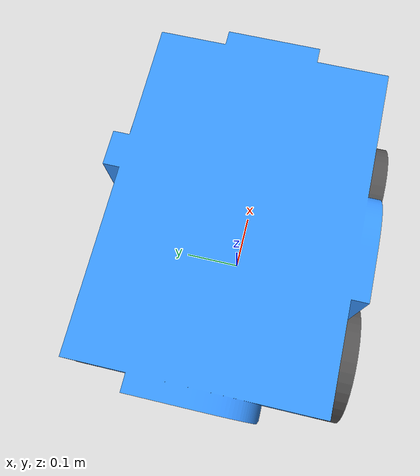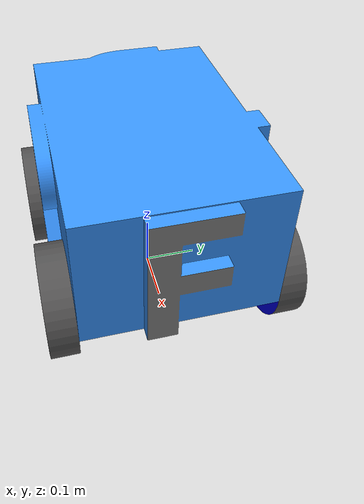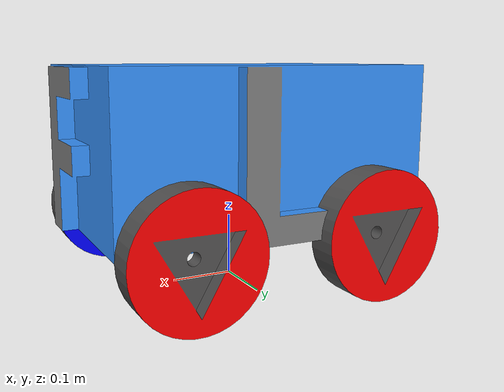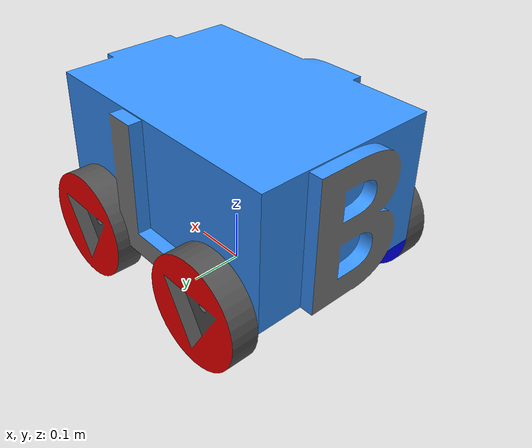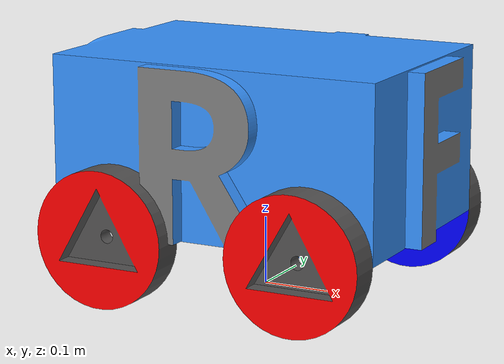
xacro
<?xml version="1.0"?>
<!-- 4 Wheel Robot with front steering and rear drive -->
<robot xmlns:xacro="http://www.ros.org/wiki/xacro" name="microros_hardware">
  <xacro:arg name="prefix" default="" />
  <xacro:arg name="sim_mode" default="false"/>

  <!-- Import Static Files -->
    <xacro:include filename="$(find microros_hardware_interface)/description/urdf/util/constants.xacro" />

  <!-- Import Rviz colors -->
    <xacro:include filename="$(find microros_hardware_interface)/description/urdf/util/materials.xacro" />

  <!-- Import Macros -->
    <xacro:include filename="$(find microros_hardware_interface)/description/urdf/macros/wheel.xacro" />

  <!-- Import Robot Description -->
    <xacro:include filename="$(find microros_hardware_interface)/description/urdf/robot.urdf.xacro" />

  <!-- Import Hardware Interface -->
    <xacro:include filename="$(find microros_hardware_interface)/description/ros2_control/microros_hardware.ros2_control.xacro" />
    <xacro:robot_hardware prefix="$(arg prefix)" />
    <xacro:micro_system_hardware_ros2_control name="MicroSystemHardware" prefix="$(arg prefix)"/>

  <!-- Hardware Components -->

    <!-- Import Driver Camera -->

    <!-- Import Oak-D -->

    <!-- Import LiDAR -->

</robot>

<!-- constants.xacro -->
<robot xmlns:xacro="http://www.ros.org/wiki/xacro">

    <!-- Physics Constants -->

        <xacro:property name="PI" value="3.1415926535897931"/>

        <xacro:property name="friction" value="1"/>
        <xacro:property name="min_depth" value="0.5"/>
        <xacro:property name="damping" value="0.001"/>

    <!-- System Wide Constants -->

        <xacro:property name="base_mass" value="20" /> <!-- arbitrary value for base mass -->
        <xacro:property name="base_width" value="0.35" />
        <xacro:property name="base_length" value="0.50" />
        <xacro:property name="base_height" value="0.25" />

    <!-- Mechanism Specific -->

        <!-- Wheels -->
            <xacro:property name="wheelbase" value="0.350" />
            <xacro:property name="wheel_width" value="0.05" />
            <xacro:property name="wheel_radius" value="0.1" />
            <xacro:property name="wheel_mass" value="0.5" /> <!-- arbitrary value for wheel mass -->

            <xacro:property name="front_left_wheel_x" value="0.150"/>
            <xacro:property name="front_left_wheel_y" value="0.175"/>
            <xacro:property name="front_left_wheel_z" value="0.00"/>

            <xacro:property name="front_right_wheel_x" value="0.150"/>
            <xacro:property name="front_right_wheel_y" value="-0.175"/>
            <xacro:property name="front_right_wheel_z" value="0.00"/>

            <xacro:property name="back_left_wheel_x" value="-0.150"/>
            <xacro:property name="back_left_wheel_y" value="0.175"/>
            <xacro:property name="back_left_wheel_z" value="0.00"/>

            <xacro:property name="back_right_wheel_x" value="-0.150"/>
            <xacro:property name="back_right_wheel_y" value="-0.175"/>
            <xacro:property name="back_right_wheel_z" value="0.00"/>
</robot>

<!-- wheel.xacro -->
<robot xmlns:xacro="http://www.ros.org/wiki/xacro">

    <!-- Macro Header -->
    <xacro:macro name="wheel" params="name x y z front side">

        <!-- Create Link -->
        <link name="${name}_wheel">

            <!-- COLLISION -->
            <collision>
                <origin xyz="0 0 0" rpy="0 0 0"/>

                <geometry>

                    <!-- Collision Calculations are easier with sphere rather than STL -->
                    <sphere radius="${wheel_radius}" />
                </geometry>

                <surface>
                    <friction>
                        <ode>
                        <mu value="${friction}"/>
                        <mu2 value="${friction}"/>
                        </ode>

                        <torsional>
                        <coefficient>0.0</coefficient>
                        </torsional>
                    </friction>

                    <contact>
                        <ode>
                        <min_depth value="${min_depth}"/>
                        </ode>
                    </contact>

                </surface>
            </collision>

            <!-- VISIUAL -->
            <visual>
                <origin xyz="0 0 0" rpy="0 0 0"/>

                <geometry>
                    <mesh filename="file://$(find microros_hardware_interface)/description/urdf/assets/wheel/Wheel.dae"/>
                </geometry>

            </visual>

            <!-- INERTIAL -->
            <inertial>
                <origin xyz="0 0 0" rpy="${PI/2} 0 ${PI/2}"/>
                <mass value="${wheel_mass}"/>
                <inertia
                    ixx="0.000270" ixy="0.0" ixz="0.0"
                    iyy="0.000270" iyz="0.0"
                    izz="0.000426"/>
            </inertial>
        </link>

        <!-- Set Gazebo Params -->
        <gazebo reference="${name}_wheel">
            <mu1 value="10"/>
            <mu2 value="10"/>
        </gazebo>

        <!-- Create Joint -->
        <joint name="${name}_wheel_joint" type="continuous">
            <!-- Parent - Child -->
            <parent link="${prefix}chassis_link"/>
            <child link="${name}_wheel"/>

            <!-- Origins and Axis Frames -->
            <origin xyz="${x} ${y} ${z}" rpy="${side * -PI/2}  0 0"/>
            <axis xyz="0 0 ${side}"/>

            <!-- Gazebo Params -->
            <limit effort="1000.0" velocity="100.0"/>
            <dynamics damping="${damping}"/>

        </joint>

    </xacro:macro>

</robot>

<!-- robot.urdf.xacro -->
<robot xmlns:xacro="http://www.ros.org/wiki/xacro">

  <xacro:macro name="robot_hardware" params="prefix">

    <!-- Base Link -->
    <link name="${prefix}base_link"/>

    <!-- Base Footprint -->
    <link name="${prefix}base_footprint"/>

    <!-- Base Link - Base Footprint -->
    <joint name="${prefix}base_footprint_joint" type="fixed">
      <parent link="${prefix}base_link"/>
      <child link="${prefix}base_footprint"/>
      <origin xyz="0 0 0" rpy="0 0 0"/>
    </joint>

    <!-- Chassis -->
    <xacro:include filename="$(find microros_hardware_interface)/description/urdf/components/chassis.xacro" />

    <!-- Wheels -->

      <!--front is positive, left is positive-->
      <xacro:wheel name="front_left" x="${front_left_wheel_x}" y="${front_left_wheel_y}" z="${front_left_wheel_z}" front="1" side="1"/>
      <xacro:wheel name="front_right" x="${front_right_wheel_x}" y="${front_right_wheel_y}" z="${front_right_wheel_z}" front="1" side="-1"/>

      <xacro:wheel name="back_left" x="${back_left_wheel_x}" y="${back_left_wheel_y}" z="${back_left_wheel_z}" front="-1" side="1"/>
      <xacro:wheel name="back_right" x="${back_right_wheel_x}" y="${back_right_wheel_y}" z="${back_right_wheel_z}" front="-1" side="-1"/>

  </xacro:macro>

</robot>

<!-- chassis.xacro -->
<robot xmlns:xacro="http://www.ros.org/wiki/xacro" >

    <!-- Chassis Link -->
    <link name="${prefix}chassis_link">

      <!-- COLLISION -->
      <collision>
        <origin xyz="0 0 0" rpy="0 0 ${PI/2}"/>
        <geometry>
          <mesh filename="file://$(find microros_hardware_interface)/description/urdf/assets/chassis/Chassis.stl"/>
        </geometry>
      </collision>

      <!-- VISUAL -->
      <visual>
        <origin xyz="0 0 0" rpy="0 0 0"/>
        <geometry>
          <mesh filename="file://$(find microros_hardware_interface)/description/urdf/assets/chassis/Chassis.dae"/>
        </geometry>
        <cast_shadows>true</cast_shadows>
      </visual>

      <!-- INERTIAL -->
      <inertial>
        <origin xyz="0 0 0" rpy="0 0 0"/>
        <mass value="${base_mass}"/>
          <inertia
            ixx="${0.01952332}" ixy="0.0" ixz="0.0"
            iyy="${0.01450326}" iyz="${-0.00000016}"
            izz="${0.02678084}"/>
        </inertial>
    </link>

    <gazebo reference="chassis_link">
    </gazebo>

    <joint name="${prefix}chassis_joint" type="fixed">
      <parent link="${prefix}base_link"/>
      <child link="${prefix}chassis_link"/>
      <origin xyz="0 0 ${wheel_radius}" rpy="0 0 0"/>
      <axis xyz="0 0 1"/>
      <dynamics damping="${damping}"/>
    </joint>

</robot>
